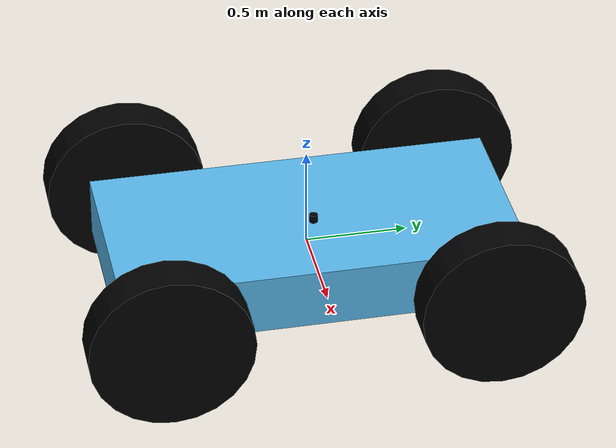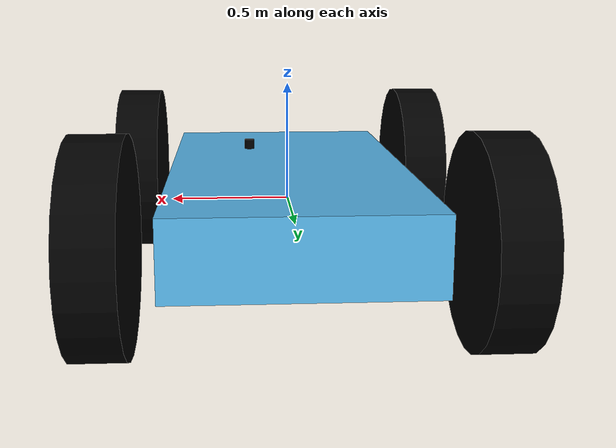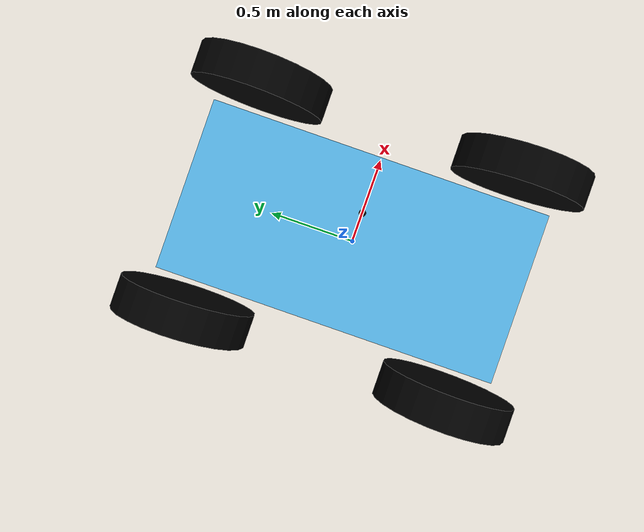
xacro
<?xml version='1.0' ?>

<robot name="jetracer" xmlns:xacro="http://www.ros.org/wiki/xacro">

  <material name="black">
    <color rgba="0 0 0 1"/>
  </material>
<link name="base_footprint" />
    <joint name="base_to_base" type="fixed">
        <parent link="base_footprint" />
        <child link="base_link" />
        <origin xyz="0 0 0" rpy="0 0 0" />
    </joint>

  <link name="base_link">
    <visual>
      <orgin rpy="0 0 0" xyz="0 0 0"/>
      <geometry>
        <box size="1 2 0.3"/>
      </geometry>
    </visual>
  </link>

  <!--Front left wheel-->
  <joint name="fl_holder_joint" type="revolute">
    <axis xyz="0 0 1"/>
    <limit effort="1000.0" lower="-0.4" upper="0.4" velocity="0.5"/>
    <origin rpy="0 0 0" xyz="-0.5 0.8 0"/>
    <parent link="base_link"/>
    <child link="fl_wheel_link"/>
  </joint>

  <link name="fl_wheel_link">
    <visual>
      <orgin rpy="0 0 0" xyz="-0.7 0.8 0"/>
      <geometry>
        <box size="0 0 0"/>
      </geometry>
    </visual>
  </link>

  <joint name="fl_wheel_joint" type="continuous">
    <axis xyz="0 0 1"/>
    <origin rpy="0 1.57 0" xyz="-0.2 0 0"/>
    <parent link="fl_wheel_link"/>
    <child link="fl_wheel"/>
  </joint>

  <link name="fl_wheel">
    <visual>
      <orgin rpy="0 0 0" xyz="-0.7 0.8 0"/>
      <geometry>
        <cylinder radius="0.4" length="0.2"/>
      </geometry>
      <material name="black"/>
    </visual>
  </link>

  <!--Front right wheel-->
  <joint name="fr_holder_joint" type="revolute">
    <axis xyz="0 0 1"/>
    <limit effort="1000.0" lower="-0.4" upper="0.4" velocity="0.5"/>
    <origin rpy="0 0 0" xyz="0.5 0.8 0"/>
    <parent link="base_link"/>
    <child link="fr_wheel_link"/>
  </joint>

  <link name="fr_wheel_link">
    <visual>
      <orgin rpy="0 0 0" xyz="0.7 0.8 0"/>
      <geometry>
        <box size="0 0 0"/>
      </geometry>
    </visual>
  </link>

  <joint name="fr_wheel_joint" type="continuous">
    <axis xyz="0 0 1"/>
    <origin rpy="0 1.57 0" xyz="0.2 0 0"/>
    <parent link="fr_wheel_link"/>
    <child link="fr_wheel"/>
  </joint>

  <link name="fr_wheel">
    <visual>
      <orgin rpy="0 0 0" xyz="0.7 0.8 0"/>
      <geometry>
        <cylinder radius="0.4" length="0.2"/>
      </geometry>
      <material name="black"/>
    </visual>
  </link>

  <!--Rear left wheel-->
  <joint name="rl_wheel_joint" type="continuous">
    <axis xyz="0 0 1"/>
    <origin rpy="0 1.57 0" xyz="-0.7 -0.8 0"/>
    <parent link="base_link"/>
    <child link="rl_wheel"/>
  </joint>

  <link name="rl_wheel">
    <visual>
      <orgin rpy="0 0 0" xyz="-0.7 -0.8 0"/>
      <geometry>
        <cylinder radius="0.4" length="0.2"/>
      </geometry>
      <material name="black"/>
    </visual>
  </link>

  <!--Rear right wheel-->
  <joint name="rr_wheel_joint" type="continuous">
    <axis xyz="0 0 1"/>
    <origin rpy="0 1.57 0" xyz="0.7 -0.8 0"/>
    <parent link="base_link"/>
    <child link="rr_wheel"/>
  </joint>

  <link name="base_scan">
        <visual>
            <geometry>
                <cylinder radius="0.02" length="0.04" />
            </geometry>
            <origin xyz="0 0 0.0" rpy="0 0 0" />
            <material name="black">
                <color rgba="0 0 0 1" />
            </material>
        </visual>
    </link>
    <joint name="base_to_scanner" type="fixed">
        <parent link="base_link" />
        <child link="base_scan" />
        <origin xyz="0.165 0 0.24" rpy="0 0 0" />
    </joint>
  <link name="rr_wheel">
    <visual>
      <orgin rpy="0 0 0" xyz="0 0 0"/>
      <geometry>
        <cylinder radius="0.4" length="0.2"/>
      </geometry>
      <material name="black"/>
    </visual>
  </link>

</robot>
